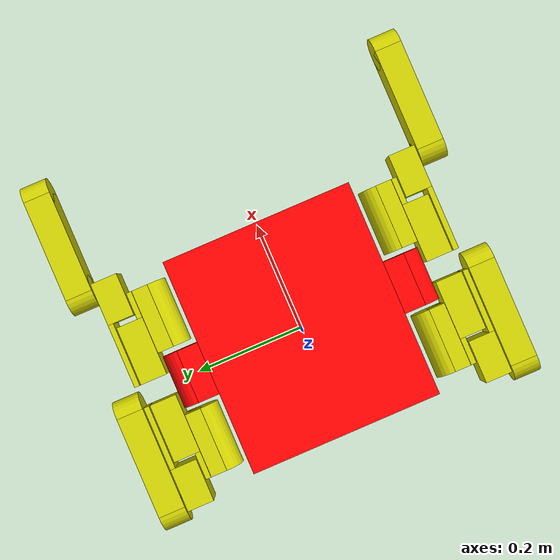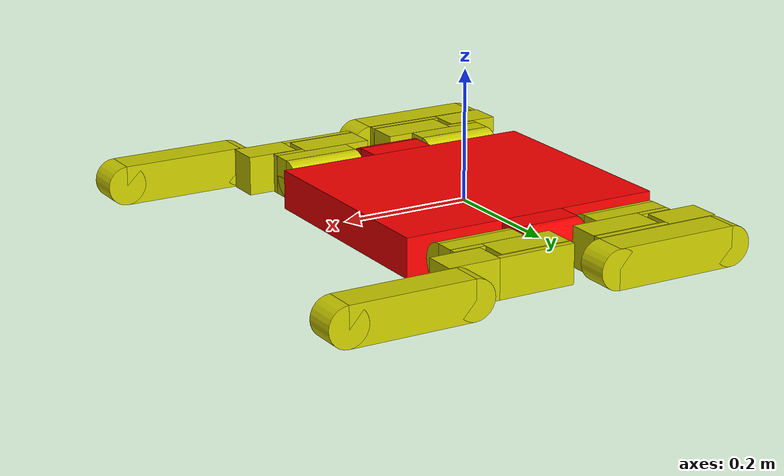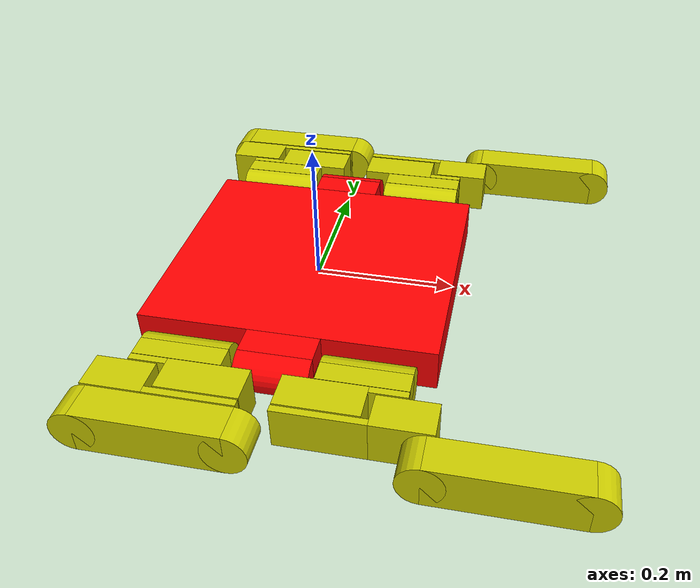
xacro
<?xml version="1.0"?>
<robot name="cricket_robot" xmlns:xacro="http://ros.org/wiki/xacro">
  <xacro:property name="body_height" value="0.06"/>
  <xacro:property name="body_length" value="0.41"/>
  <xacro:property name="body_width" value="0.36"/>
  <xacro:property name="track_length" value="0.25"/>
  <xacro:property name="body_box_size" value="0.1"/>
  <xacro:property name="pi" value="3.1415" />
  <xacro:property name="cyl_rad" value="0.03" />

  <material name="yellow">
    <color rgba="0.8 0.8 0 1"/>
  </material>

  <material name="red">
    <color rgba="1 0 0 1"/>
  </material>

  <xacro:macro name="default_inertial" params="mass">
    <inertial>
      <mass value="${mass}" />
      <inertia ixx="1.0" ixy="0.0" ixz="0.0" iyy="1.0" iyz="0.0" izz="1.0" />
    </inertial>
  </xacro:macro>

  <link name="base_link">
    <visual>
      <geometry>
        <box size="${body_length} ${body_width} ${body_height}"/>
      </geometry>
      <material name="red"/>
    </visual>
    <collision>
      <geometry>
        <box size="${body_length} ${body_width} ${body_height}"/>
      </geometry>
    </collision>
  </link>

  <!-- #####  BODY  BOX ##### -->

  <xacro:macro name="body_box" params="body_side origin_bb origin_bc">

    <link name="${body_side}_box">
      <visual>
        <geometry>
            <box size="${body_box_size} 0.04 ${body_height}"/>
        </geometry>
        <material name="red"/>
      </visual>
      <collision>
        <geometry>
            <box size="${body_box_size} 0.04 ${body_height}"/>
        </geometry>
      </collision>
    </link>

    <joint name="body_to_${body_side}_box" type="fixed">
      <parent link="base_link"/>
      <child link="${body_side}_box"/>
      <origin xyz="0.0 ${origin_bb} 0.0"/>
    </joint>

    <link name="${body_side}_cylinder">
      <visual name="${body_side}_cylinder">
        <origin rpy="0 ${pi/2} 0" xyz="0 0.0 0"/>
        <geometry>
          <cylinder radius="${cyl_rad}" length="0.1"/>
        </geometry>
        <material name="red"/>
      </visual>
      <collision>
        <geometry>
          <cylinder radius="${cyl_rad}" length="0.1"/>
        </geometry>
      </collision>
    </link>

    <joint name="${body_side}_box-cylinder" type="fixed">
      <parent link="${body_side}_box"/>
      <child link="${body_side}_cylinder"/>
      <origin xyz="0.0 ${origin_bc} 0.0" rpy="0.0 0.0 0.0"/>
    </joint>

  </xacro:macro>

  <xacro:body_box body_side="right" origin_bb="0.2" origin_bc="0.02"/>
  <xacro:body_box body_side="left" origin_bb="-0.2" origin_bc="-0.02"/>

  <!-- ##### RIGHT LEGS ##### -->

  <xacro:macro name="right_leg" params="body_side o_shoulder o_s_box o_s2_base o_s2_box o_s2_base_box o_k_box o_k_base_box o_track rpy_track">
    <!-- * SHOULDER 1 -->
    <link name="r_${body_side}_shoulder_cylinder">
      <visual name="r_${body_side}_shoulder_cylinder">
        <origin rpy="0 ${pi/2} 0" xyz="0.0 0.0 0"/>
        <geometry>
          <cylinder radius="${cyl_rad}" length="0.12"/>
        </geometry>
        <material name="yellow"/>
      </visual>
      <collision>
        <geometry>
          <cylinder radius="${cyl_rad}" length="0.12"/>
        </geometry>
      </collision>
    </link>

    <joint name="r_${body_side}_shoulder-body" type="revolute">
      <axis xyz="1 0.0 0.0"/>
      <limit effort="1000.0" lower="-1.57075" upper="1.57075" velocity="0.5"/>
      <origin xyz="${o_shoulder} 0.0 0.0" rpy="0 0 0.0"/>
      <parent link="right_cylinder"/>
      <child link="r_${body_side}_shoulder_cylinder"/>
    </joint>

    <link name="r_${body_side}_shoulder_box">
      <visual name="r_${body_side}_shoulder_box">
        <origin rpy="0 0 0" xyz="${o_s_box} -0.0005 0"/>
        <geometry>
          <box size="0.12 0.03 0.06"/>
        </geometry>
        <material name="yellow"/>
      </visual>
      <collision>
        <geometry>
          <box size="0.12 0.03 0.06"/>
        </geometry>
      </collision>
    </link>

    <joint name="r_${body_side}_shoulder_cyl-box" type="fixed">
      <origin xyz="${- o_s_box} 0.017 0.0" rpy="0.0 0.0 0.0"/>
      <parent link="r_${body_side}_shoulder_cylinder"/>
      <child link="r_${body_side}_shoulder_box"/>
    </joint>

    <!-- * SHOULDER 2  -->
    <link name="r_${body_side}_shoulder2_base">
      <visual name="r_${body_side}_shoulder2_base">
        <origin xyz="${o_s2_base} 0.0 0.0" rpy="0.0 0.0 0.0"/>
        <geometry>
          <box size="0.05 0.01 0.06"/>
        </geometry>
        <material name="yellow"/>
      </visual>
      <collision>
        <geometry>
          <box size="0.05 0.01 0.06"/>
        </geometry>
      </collision>
    </link>

    <joint name="r_${body_side}_shoulder2-shoulder" type="continuous">
      <axis xyz="0.0 1 0.0"/>
      <origin xyz="0.0 0.02 0.0" rpy="0.0 0.0 0.0"/>
      <parent link="r_${body_side}_shoulder_box"/>
      <child link="r_${body_side}_shoulder2_base"/>
    </joint>

    <link name="r_${body_side}_shoulder2_box">
      <visual name="r_${body_side}_shoulder2_box">
        <origin xyz="${o_s2_box} 0.02 0.0" rpy="0.0 0.0 0.0"/>
        <geometry>
          <box size="0.11 0.05 0.06"/>
        </geometry>
        <material name="yellow"/>
      </visual>
      <collision>
        <geometry>
          <box size="0.11 0.05 0.06"/>
        </geometry>
      </collision>
    </link>

    <joint name="r_${body_side}_shoulder2_base-box" type="fixed">
      <origin xyz="${o_s2_base_box} 0.0 0.0" rpy="0.0 0.0 0.0"/>
      <parent link="r_${body_side}_shoulder2_base"/>
      <child link="r_${body_side}_shoulder2_box"/>
    </joint>

    <!-- KNEE -->
    <link name="r_${body_side}_knee_base">
      <visual name="r_${body_side}_knee_base">
        <origin xyz="${- o_s_box} 0.0 0.0" rpy="0.0 0.0 0.0"/>
        <geometry>
          <box size="0.12 0.01 0.06"/>
        </geometry>
        <material name="yellow"/>
      </visual>
      <collision>
        <geometry>
          <box size="0.12 0.01 0.06"/>
        </geometry>
      </collision>
    </link>

    <joint name="r_${body_side}_shoulder2-knee" type="continuous">
      <axis xyz="0.0 1 0.0"/>
      <origin xyz="0.0 0.052 0.0" rpy="0.0 0.0 0.0"/>
      <parent link="r_${body_side}_shoulder2_box"/>
      <child link="r_${body_side}_knee_base"/>
    </joint>

    <link name="r_${body_side}_knee_box">
      <visual name="r_${body_side}_knee_box">
        <origin xyz="${o_k_box} -0.02 0.0" rpy="0.0 0.0 0.0"/>
        <geometry>
          <box size="0.08 0.05 0.06"/>
        </geometry>
        <material name="yellow"/>
      </visual>
      <collision>
        <geometry>
          <box size="0.08 0.05 0.06"/>
        </geometry>
      </collision>
    </link>

    <joint name="r_${body_side}_knee_base-box" type="fixed">
      <origin xyz="${o_k_base_box} 0.0 0.0" rpy="0.0 0.0 0.0"/>
      <parent link="r_${body_side}_knee_base"/>
      <child link="r_${body_side}_knee_box"/>
    </joint>

    <!-- ANKLE & TRACK -->
    <link name="r_${body_side}_jointed_track">
      <visual name="r_${body_side}_jointed_track">
        <origin xyz="0.0 0.0 0.0" rpy="0.0 1.57075 1.57075"/>
        <geometry>
          <cylinder radius="${cyl_rad}" length="0.05"/>
        </geometry>
        <material name="yellow"/>
      </visual>
      <collision>
        <geometry>
          <cylinder radius="${cyl_rad}" length="0.05"/>
        </geometry>
      </collision>
    </link>

    <joint name="r_${body_side}_ankle" type="continuous">
      <axis xyz="0.0 1 0.0"/>
      <origin xyz="0.0 0.032 0.0" rpy="0.0 0.0 0.0"/>
      <parent link="r_${body_side}_knee_box"/>
      <child link="r_${body_side}_jointed_track"/>
    </joint>

    <link name="r_${body_side}_track">
      <visual name="r_${body_side}_track">
        <origin xyz="0.0 0.0 0.0" rpy="0.0 0.0 0.0"/>
        <geometry>
          <box size="0.190 0.05 0.06"/>
        </geometry>
        <material name="yellow"/>
      </visual>
      <collision>
        <geometry>
          <box size="0.190 0.05 0.06"/>
        </geometry>
      </collision>
    </link>

    <joint name="r_${body_side}_jointed_track-track" type="fixed">
      <origin xyz="0.095 0.0 0.0" rpy="0.0 ${rpy_track} 0.0"/>
      <parent link="r_${body_side}_jointed_track"/>
      <child link="r_${body_side}_track"/>
    </joint>

    <link name="r_${body_side}_ends_track">
      <visual name="r_${body_side}_ends_track">
        <origin xyz="0.0 0.0 0.0" rpy="0.0 1.57075 1.57075"/>
        <geometry>
          <cylinder radius="${cyl_rad}" length="0.05"/>
        </geometry>
        <material name="yellow"/>
      </visual>
      <collision>
        <geometry>
          <cylinder radius="${cyl_rad}" length="0.05"/>
        </geometry>
      </collision>
    </link>

    <joint name="r_${body_side}_final_track_joint" type="continuous">
      <axis xyz="0.0 1 0.0"/>
      <origin xyz="${o_track} 0.0 0.0" rpy="0.0 0.0 0.0"/>
      <parent link="r_${body_side}_track"/>
      <child link="r_${body_side}_ends_track"/>
    </joint>
  </xacro:macro>

  <xacro:right_leg body_side="front" o_shoulder="0.12" o_s_box="-0.05" o_s2_base="-0.015" o_s2_box="0.045" o_s2_base_box="-0.14" o_k_box="-0.03" o_k_base_box="0.18" o_track="0.095" rpy_track="0.0"/>
  <xacro:right_leg body_side="back" o_shoulder="-0.12" o_s_box="0.05" o_s2_base="0.015" o_s2_box="-0.045" o_s2_base_box="0.14" o_k_box="0.03" o_k_base_box="-0.18" o_track="-0.095" rpy_track="3.1415"/>

  <!-- ##### LEFT LEGS ##### -->

  <xacro:macro name="left_leg" params="body_side o_shoulder o_s_box o_s2_base o_s2_box o_s2_base_box o_k_box o_k_base_box o_track rpy_track">
    <!-- * SHOULDER 1 -->
    <link name="l_${body_side}_shoulder_cylinder">
      <visual name="l_${body_side}_shoulder_cylinder">
        <origin rpy="0 ${pi/2} 0" xyz="0.0 0.0 0"/>
        <geometry>
          <cylinder radius="${cyl_rad}" length="0.12"/>
        </geometry>
        <material name="yellow"/>
      </visual>
      <collision>
        <geometry>
          <cylinder radius="${cyl_rad}" length="0.12"/>
        </geometry>
      </collision>
    </link>

    <joint name="l_${body_side}_shoulder-body" type="revolute">
      <axis xyz="1 0.0 0.0"/>
      <limit effort="1000.0" lower="-1.57075" upper="1.57075" velocity="0.5"/>
      <origin xyz="${o_shoulder} 0.0 0.0" rpy="0 0 0.0"/>
      <parent link="left_cylinder"/>
      <child link="l_${body_side}_shoulder_cylinder"/>
    </joint>

    <link name="l_${body_side}_shoulder_box">
      <visual name="l_${body_side}_shoulder_box">
        <origin rpy="0 0 0" xyz=" ${o_s_box} 0.0005 0"/>
        <geometry>
          <box size="0.12 0.03 0.06"/>
        </geometry>
        <material name="yellow"/>
      </visual>
      <collision>
        <geometry>
          <box size="0.12 0.03 0.06"/>
        </geometry>
      </collision>
    </link>

    <joint name="l_${body_side}_shoulder_cyl-box" type="fixed">
      <origin xyz="${- o_s_box} -0.017 0.0" rpy="0.0 0.0 0.0"/>
      <parent link="l_${body_side}_shoulder_cylinder"/>
      <child link="l_${body_side}_shoulder_box"/>
    </joint>

    <!-- * SHOULDER 2  -->
    <link name="l_${body_side}_shoulder2_base">
      <visual name="l_${body_side}_shoulder2_base">
        <origin xyz="${o_s2_base} 0.0 0.0" rpy="0.0 0.0 0.0"/>
        <geometry>
          <box size="0.05 0.01 0.06"/>
        </geometry>
        <material name="yellow"/>
      </visual>
      <collision>
        <geometry>
          <box size="0.05 0.01 0.06"/>
        </geometry>
      </collision>
    </link>

    <joint name="l_${body_side}_shoulder2-shoulder" type="continuous">
      <axis xyz="0.0 1 0.0"/>
      <origin xyz="0.0 -0.02 0.0" rpy="0.0 0.0 0.0"/>
      <parent link="l_${body_side}_shoulder_box"/>
      <child link="l_${body_side}_shoulder2_base"/>
    </joint>

    <link name="l_${body_side}_shoulder2_box">
      <visual name="l_${body_side}_shoulder2_box">
        <origin xyz="${o_s2_box} -0.02 0.0" rpy="0.0 0.0 0.0"/>
        <geometry>
          <box size="0.11 0.05 0.06"/>
        </geometry>
        <material name="yellow"/>
      </visual>
      <collision>
        <geometry>
          <box size="0.11 0.05 0.06"/>
        </geometry>
      </collision>
    </link>

    <joint name="l_${body_side}_shoulder2_base-box" type="fixed">
      <origin xyz="${o_s2_base_box} 0.0 0.0" rpy="0.0 0.0 0.0"/>
      <parent link="l_${body_side}_shoulder2_base"/>
      <child link="l_${body_side}_shoulder2_box"/>
    </joint>

    <!-- KNEE -->
    <link name="l_${body_side}_knee_base">
      <visual name="l_${body_side}_knee_base">
        <origin xyz="${- o_s_box} 0.0 0.0" rpy="0.0 0.0 0.0"/>
        <geometry>
          <box size="0.12 0.01 0.06"/>
        </geometry>
        <material name="yellow"/>
      </visual>
      <collision>
        <geometry>
          <box size="0.12 0.01 0.06"/>
        </geometry>
      </collision>
    </link>

    <joint name="l_${body_side}_shoulder2-knee" type="continuous">
      <axis xyz="0.0 1 0.0"/>
      <origin xyz="0.0 -0.052 0.0" rpy="0.0 0.0 0.0"/>
      <parent link="l_${body_side}_shoulder2_box"/>
      <child link="l_${body_side}_knee_base"/>
    </joint>

    <link name="l_${body_side}_knee_box">
      <visual name="l_${body_side}_knee_box">
        <origin xyz="${o_k_box} 0.02 0.0" rpy="0.0 0.0 0.0"/>
        <geometry>
          <box size="0.08 0.05 0.06"/>
        </geometry>
        <material name="yellow"/>
      </visual>
      <collision>
        <geometry>
          <box size="0.08 0.05 0.06"/>
        </geometry>
      </collision>
    </link>

    <joint name="l_${body_side}_knee_base-box" type="fixed">
      <origin xyz="${o_k_base_box} 0.0 0.0" rpy="0.0 0.0 0.0"/>
      <parent link="l_${body_side}_knee_base"/>
      <child link="l_${body_side}_knee_box"/>
    </joint>

    <!-- ANKLE & TRACK -->
    <link name="l_${body_side}_jointed_track">
      <visual name="l_${body_side}_jointed_track">
        <origin xyz="0.0 0.0 0.0" rpy="0.0 1.57075 1.57075"/>
        <geometry>
          <cylinder radius="${cyl_rad}" length="0.05"/>
        </geometry>
        <material name="yellow"/>
      </visual>
      <collision>
        <geometry>
          <cylinder radius="${cyl_rad}" length="0.05"/>
        </geometry>
      </collision>
    </link>

    <joint name="l_${body_side}_ankle" type="continuous">
      <axis xyz="0.0 1 0.0"/>
      <origin xyz="0.0 -0.032 0.0" rpy="0.0 0.0 0.0"/>
      <parent link="l_${body_side}_knee_box"/>
      <child link="l_${body_side}_jointed_track"/>
    </joint>

    <link name="l_${body_side}_track">
      <visual name="l_${body_side}_track">
        <origin xyz="0.0 0.0 0.0" rpy="0.0 0.0 0.0"/>
        <geometry>
          <box size="0.190 0.05 0.06"/>
        </geometry>
        <material name="yellow"/>
      </visual>
      <collision>
        <geometry>
          <box size="0.190 0.05 0.06"/>
        </geometry>
      </collision>
    </link>

    <joint name="l_${body_side}_jointed_track-track" type="fixed">
      <origin xyz="0.095 0.0 0.0" rpy="0.0 ${rpy_track} 0.0"/>
      <parent link="l_${body_side}_jointed_track"/>
      <child link="l_${body_side}_track"/>
    </joint>

    <link name="l_${body_side}_ends_track">
      <visual name="l_${body_side}_ends_track">
        <origin xyz="0.0 0.0 0.0" rpy="0.0 1.57075 1.57075"/>
        <geometry>
          <cylinder radius="${cyl_rad}" length="0.05"/>
        </geometry>
        <material name="yellow"/>
      </visual>
      <collision>
        <geometry>
          <cylinder radius="${cyl_rad}" length="0.05"/>
        </geometry>
      </collision>
    </link>

    <joint name="l_${body_side}_final_track_joint" type="continuous">
      <axis xyz="0.0 1 0.0"/>
      <origin xyz="${o_track} 0.0 0.0" rpy="0.0 0.0 0.0"/>
      <parent link="l_${body_side}_track"/>
      <child link="l_${body_side}_ends_track"/>
    </joint>
  </xacro:macro>

  <xacro:left_leg body_side="front" o_shoulder="0.12" o_s_box="-0.05" o_s2_base="-0.015" o_s2_box="0.045" o_s2_base_box="-0.14" o_k_box="-0.03" o_k_base_box="0.18" o_track="0.095" rpy_track="0.0"/>
  <xacro:left_leg body_side="back" o_shoulder="-0.12" o_s_box="0.05" o_s2_base="0.015" o_s2_box="-0.045" o_s2_base_box="0.14" o_k_box="0.03" o_k_base_box="-0.18" o_track="-0.095" rpy_track="3.1415"/>

  <!-- Gazebo plugin for ROS Control -->
  <gazebo>
    <plugin name="gazebo_ros_control" filename="libgazebo_ros_control.so">
      <robotNamespace>/</robotNamespace>
    </plugin>
  </gazebo>

</robot>
